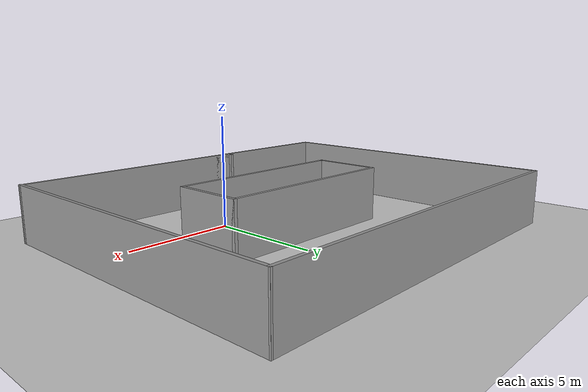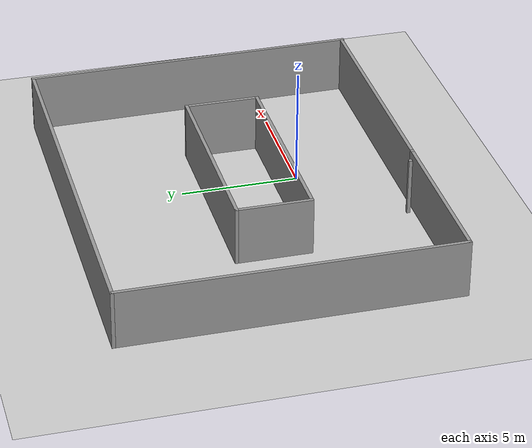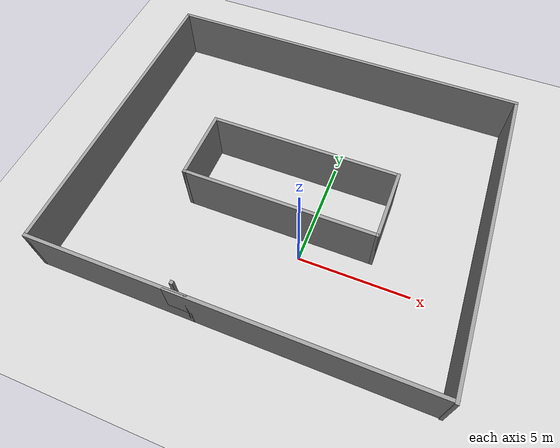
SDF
<sdf version="1.6">
 <world name="default">
  <light name="sun" type="directional">
   <pose>0 0 10 0 -0 0</pose>
   <diffuse>0.8 0.8 0.8 1</diffuse>
   <specular>0.2 0.2 0.2 1</specular>
   <attenuation>
    <range>1000</range>
    <constant>0.9</constant>
    <linear>0.01</linear>
    <quadratic>0.001</quadratic>
   </attenuation>
   <direction>-0.5 0.1 -0.9</direction>
  </light>
  <model name="ground_plane">
   <static>1</static>
   <link name="link">
    <collision name="collision">
     <geometry><plane><normal>0 0 1</normal><size>100 100</size></plane></geometry>
     <surface><friction><ode><mu>100</mu><mu2>50</mu2></ode></friction></surface>
    </collision>
    <visual name="visual">
     <cast_shadows>0</cast_shadows>
     <geometry><plane><normal>0 0 1</normal><size>100 100</size></plane></geometry>
     <material>
      <script><uri>file://media/materials/scripts/gazebo.material</uri><name>Gazebo/Grey</name></script>
     </material>
    </visual>
   </link>
  </model>
  <gravity>0 0 -9.8</gravity>
  <magnetic_field>6e-06 2.3e-05 -4.2e-05</magnetic_field>
  <atmosphere type="adiabatic"/>
  <physics name="default_physics" default="0" type="ode">
   <max_step_size>0.001</max_step_size>
   <real_time_factor>1</real_time_factor>
   <real_time_update_rate>1000</real_time_update_rate>
  </physics>
  <scene><ambient>0.4 0.4 0.4 1</ambient><background>0.7 0.7 0.7 1</background><shadows>1</shadows></scene>
  <audio><device>default</device></audio>
  <spherical_coordinates>
   <surface_model>EARTH_WGS84</surface_model>
   <latitude_deg>0</latitude_deg>
   <longitude_deg>0</longitude_deg>
   <elevation>0</elevation>
   <heading_deg>0</heading_deg>
  </spherical_coordinates>
  <model name="Untitled">
   <pose>-1.41451 2.94251 0 0 -0 0</pose>
   <link name="Wall_1">
    <collision name="Wall_1_Collision">
     <geometry><box><size>0.15 0.15 2.5</size></box></geometry>
     <pose>0 0 1.25 0 -0 0</pose>
    </collision>
    <visual name="Wall_1_Visual">
     <pose>0 0 1.25 0 -0 0</pose>
     <geometry><box><size>0.15 0.15 2.5</size></box></geometry>
     <material>
      <script><uri>file://media/materials/scripts/gazebo.material</uri><name>Gazebo/Grey</name></script>
      <ambient>1 1 1 1</ambient>
     </material>
     <meta><layer>0</layer></meta>
    </visual>
    <pose>-2.27549 -6.71251 0 0 -0 0</pose>
   </link>
   <link name="Wall_14">
    <collision name="Wall_14_Collision">
     <geometry><box><size>8.75 0.15 2.5</size></box></geometry>
     <pose>0 0 1.25 0 -0 0</pose>
    </collision>
    <visual name="Wall_14_Visual">
     <pose>0 0 1.25 0 -0 0</pose>
     <geometry><box><size>8.75 0.15 2.5</size></box></geometry>
     <material>
      <script><uri>file://media/materials/scripts/gazebo.material</uri><name>Gazebo/Grey</name></script>
      <ambient>1 1 1 1</ambient>
     </material>
     <meta><layer>0</layer></meta>
    </visual>
    <pose>0.099515 -1.96962 0 0 -0 0</pose>
   </link>
   <link name="Wall_20">
    <collision name="Wall_20_Collision">
     <geometry><box><size>8.75 0.15 2.5</size></box></geometry>
     <pose>0 0 1.25 0 -0 0</pose>
    </collision>
    <visual name="Wall_20_Visual">
     <pose>0 0 1.25 0 -0 0</pose>
     <geometry><box><size>8.75 0.15 2.5</size></box></geometry>
     <material>
      <script><uri>file://media/materials/scripts/gazebo.material</uri><name>Gazebo/Grey</name></script>
      <ambient>1 1 1 1</ambient>
     </material>
     <meta><layer>0</layer></meta>
    </visual>
    <pose>0.099515 -1.96962 0 0 -0 0</pose>
   </link>
   <link name="Wall_21">
    <collision name="Wall_21_Collision">
     <geometry><box><size>3.25 0.15 2.5</size></box></geometry>
     <pose>0 0 1.25 0 -0 0</pose>
    </collision>
    <visual name="Wall_21_Visual">
     <pose>0 0 1.25 0 -0 0</pose>
     <geometry><box><size>3.25 0.15 2.5</size></box></geometry>
     <material>
      <script><uri>file://media/materials/scripts/gazebo.material</uri><name>Gazebo/Grey</name></script>
      <ambient>1 1 1 1</ambient>
     </material>
     <meta><layer>0</layer></meta>
    </visual>
    <pose>4.39952 -0.41962 0 0 -0 1.5708</pose>
   </link>
   <link name="Wall_22">
    <collision name="Wall_22_Collision">
     <geometry><box><size>8.75 0.15 2.5</size></box></geometry>
     <pose>0 0 1.25 0 -0 0</pose>
    </collision>
    <visual name="Wall_22_Visual">
     <pose>0 0 1.25 0 -0 0</pose>
     <geometry><box><size>8.75 0.15 2.5</size></box></geometry>
     <material>
      <script><uri>file://media/materials/scripts/gazebo.material</uri><name>Gazebo/Grey</name></script>
      <ambient>1 1 1 1</ambient>
     </material>
     <meta><layer>0</layer></meta>
    </visual>
    <pose>0.099515 1.13038 0 0 -0 3.14159</pose>
   </link>
   <link name="Wall_23">
    <collision name="Wall_23_Collision">
     <geometry><box><size>3.25 0.15 2.5</size></box></geometry>
     <pose>0 0 1.25 0 -0 0</pose>
    </collision>
    <visual name="Wall_23_Visual">
     <pose>0 0 1.25 0 -0 0</pose>
     <geometry><box><size>3.25 0.15 2.5</size></box></geometry>
     <material>
      <script><uri>file://media/materials/scripts/gazebo.material</uri><name>Gazebo/Grey</name></script>
      <ambient>1 1 1 1</ambient>
     </material>
     <meta><layer>0</layer></meta>
    </visual>
    <pose>-4.20048 -0.41962 0 0 -0 -1.5708</pose>
   </link>
   <link name="Wall_24">
    <collision name="Wall_24_Collision">
     <geometry><box><size>0.16 0.15 2.5</size></box></geometry>
     <pose>0 0 1.25 0 -0 0</pose>
    </collision>
    <visual name="Wall_24_Visual">
     <pose>0 0 1.25 0 -0 0</pose>
     <geometry><box><size>0.16 0.15 2.5</size></box></geometry>
     <material>
      <script><uri>file://media/materials/scripts/gazebo.material</uri><name>Gazebo/Grey</name></script>
      <ambient>1 1 1 1</ambient>
     </material>
     <meta><layer>0</layer></meta>
    </visual>
    <pose>-4.19548 -1.96962 0 0 -0 0</pose>
   </link>
   <link name="Wall_4">
    <collision name="Wall_4_Collision">
     <geometry><box><size>11.25 0.15 2.5</size></box></geometry>
     <pose>0 0 1.25 0 -0 0</pose>
    </collision>
    <visual name="Wall_4_Visual">
     <pose>0 0 1.25 0 -0 0</pose>
     <geometry><box><size>11.25 0.15 2.5</size></box></geometry>
     <material>
      <script><uri>file://media/materials/scripts/gazebo.material</uri><name>Gazebo/Grey</name></script>
      <ambient>1 1 1 1</ambient>
     </material>
     <meta><layer>0</layer></meta>
    </visual>
    <pose>3.10439 -7.03251 0 0 -0 0</pose>
   </link>
   <link name="Wall_5">
    <collision name="Wall_5_Collision">
     <geometry><box><size>14.2865 0.15 2.5</size></box></geometry>
     <pose>0 0 1.25 0 -0 0</pose>
    </collision>
    <visual name="Wall_5_Visual">
     <pose>0 0 1.25 0 -0 0</pose>
     <geometry><box><size>14.2865 0.15 2.5</size></box></geometry>
     <material>
      <script><uri>file://media/materials/scripts/gazebo.material</uri><name>Gazebo/Grey</name></script>
      <ambient>1 1 1 1</ambient>
     </material>
     <meta><layer>0</layer></meta>
    </visual>
    <pose>8.54945 -0 0 0 -0 1.58564</pose>
   </link>
   <link name="Wall_6">
    <collision name="Wall_6_Collision">
     <geometry><box><size>17.25 0.15 2.5</size></box></geometry>
     <pose>0 0 1.25 0 -0 0</pose>
    </collision>
    <visual name="Wall_6_Visual">
     <pose>0 0 1.25 0 -0 0</pose>
     <geometry><box><size>17.25 0.15 2.5</size></box></geometry>
     <material>
      <script><uri>file://media/materials/scripts/gazebo.material</uri><name>Gazebo/Grey</name></script>
      <ambient>1 1 1 1</ambient>
     </material>
     <meta><layer>0</layer></meta>
    </visual>
    <pose>-0.105493 7.06749 0 0 -0 3.14159</pose>
   </link>
   <link name="Wall_7">
    <collision name="Wall_7_Collision">
     <geometry><box><size>14.25 0.15 2.5</size></box></geometry>
     <pose>0 0 1.25 0 -0 0</pose>
    </collision>
    <visual name="Wall_7_Visual">
     <pose>0 0 1.25 0 -0 0</pose>
     <geometry><box><size>14.25 0.15 2.5</size></box></geometry>
     <material>
      <script><uri>file://media/materials/scripts/gazebo.material</uri><name>Gazebo/Grey</name></script>
      <ambient>1 1 1 1</ambient>
     </material>
     <meta><layer>0</layer></meta>
    </visual>
    <pose>-8.65549 0.01749 0 0 -0 -1.5708</pose>
   </link>
   <link name="Wall_8">
    <collision name="Wall_8_Collision">
     <geometry><box><size>7.25 0.15 2.5</size></box></geometry>
     <pose>0 0 1.25 0 -0 0</pose>
    </collision>
    <visual name="Wall_8_Visual">
     <pose>0 0 1.25 0 -0 0</pose>
     <geometry><box><size>7.25 0.15 2.5</size></box></geometry>
     <material>
      <script><uri>file://media/materials/scripts/gazebo.material</uri><name>Gazebo/Grey</name></script>
      <ambient>1 1 1 1</ambient>
     </material>
     <meta><layer>0</layer></meta>
    </visual>
    <pose>-5.10549 -7.03251 0 0 -0 0</pose>
   </link>
   <link name="Wall_9">
    <collision name="Wall_9_Collision">
     <geometry><box><size>0.15 0.15 2.5</size></box></geometry>
     <pose>0 0 1.25 0 -0 0</pose>
    </collision>
    <visual name="Wall_9_Visual">
     <pose>0 0 1.25 0 -0 0</pose>
     <geometry><box><size>0.15 0.15 2.5</size></box></geometry>
     <material>
      <script><uri>file://media/materials/scripts/gazebo.material</uri><name>Gazebo/Grey</name></script>
      <ambient>1 1 1 1</ambient>
     </material>
     <meta><layer>0</layer></meta>
    </visual>
    <pose>-1.55549 -7.03251 0 0 -0 0</pose>
   </link>
   <static>1</static>
  </model>
 </world>
</sdf>
